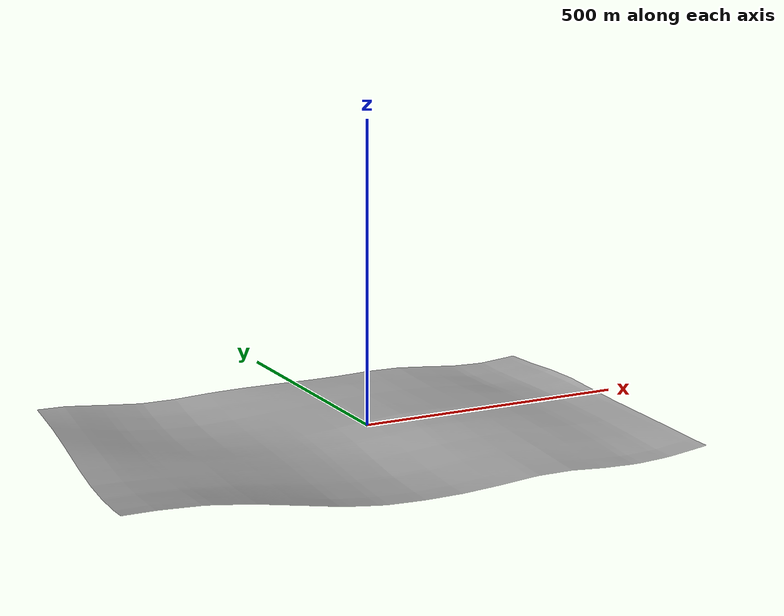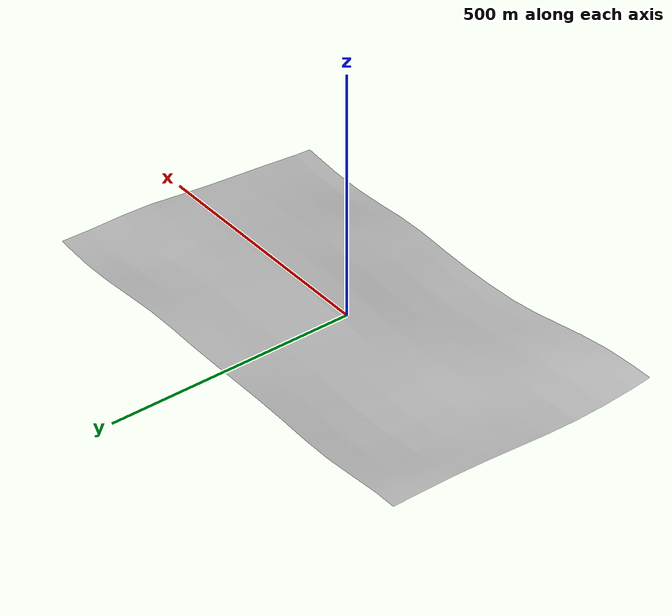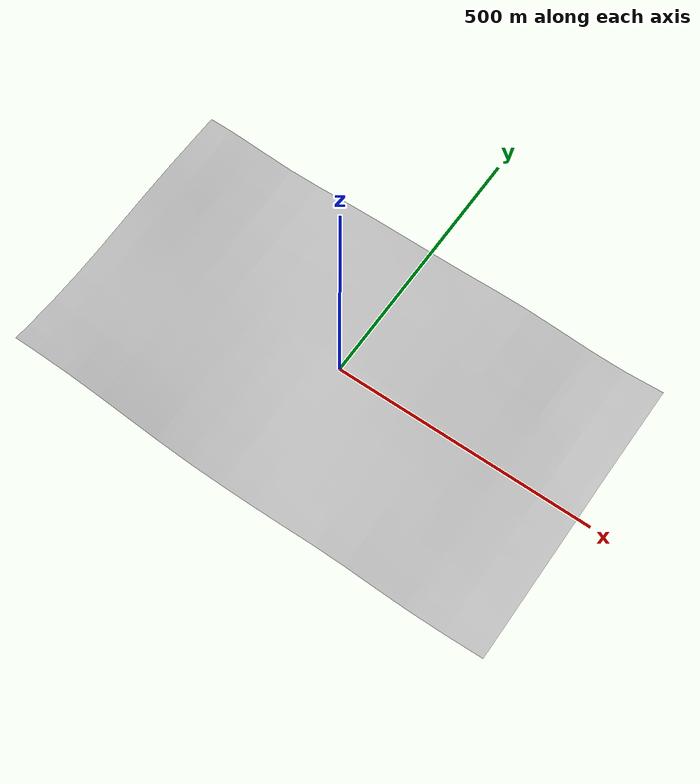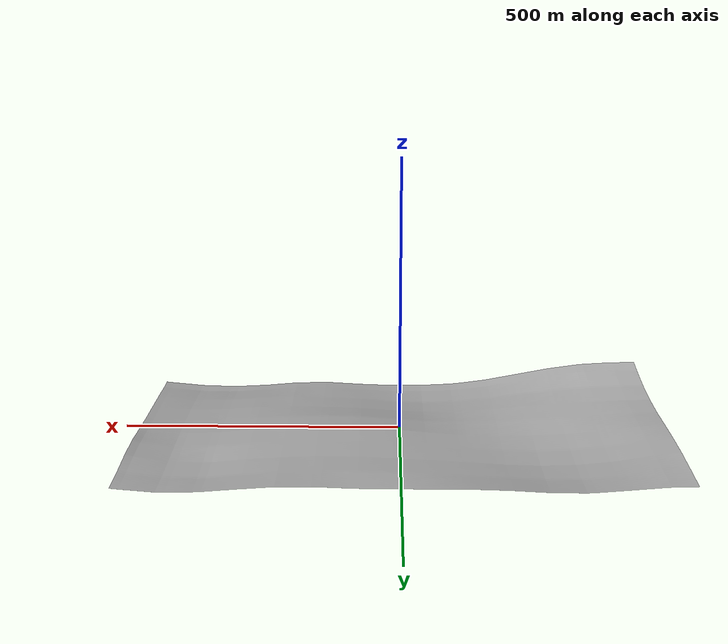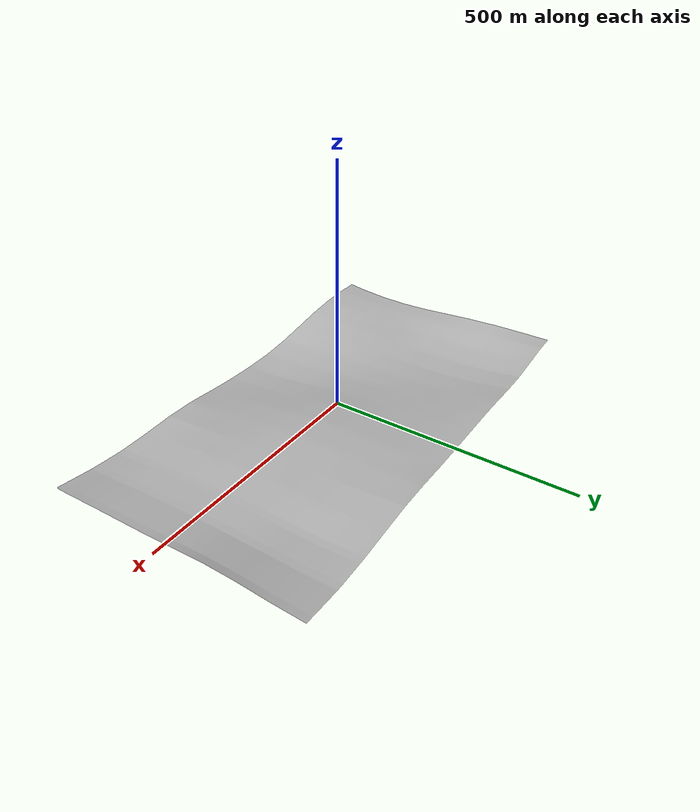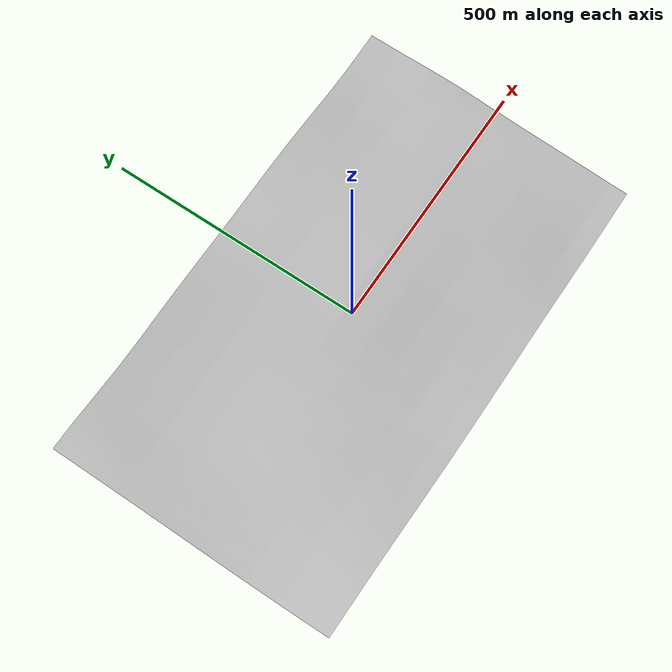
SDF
<?xml version="1.0" ?>
<sdf version="1.4">
  <model name="p1">
	<static>true</static>
	<link name="link">
	  <pose>0 0 -13.0 0 0 0</pose>
	    <collision name="my_collision">
		<geometry>
                   <mesh><uri>model://p1/untitled.dae</uri></mesh>
		 </geometry>
	    </collision>

	    <visual name="my_visual">
		<geometry>
                   <mesh><uri>model://p1/untitled.dae</uri></mesh>
		 </geometry>
	    </visual>
	</link>
</model>
</sdf>
